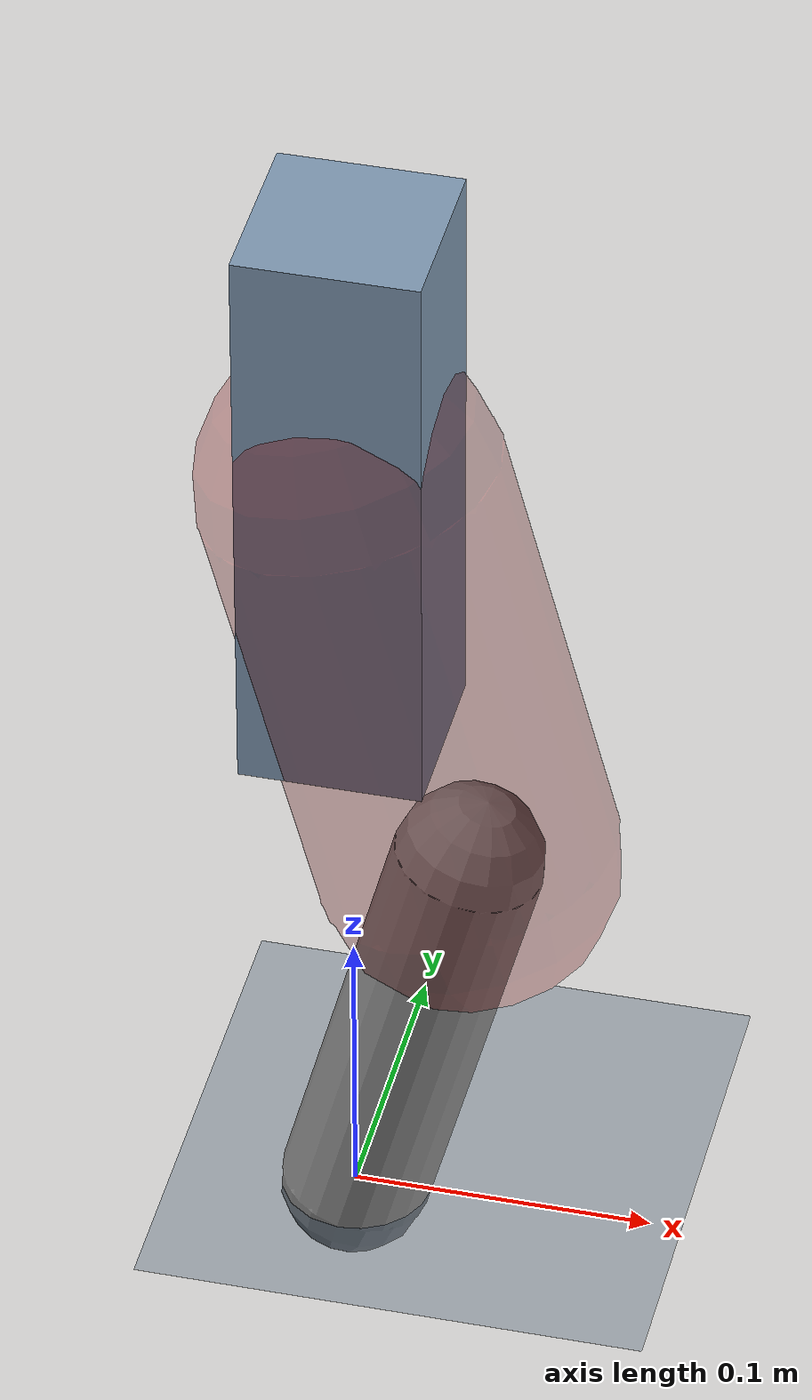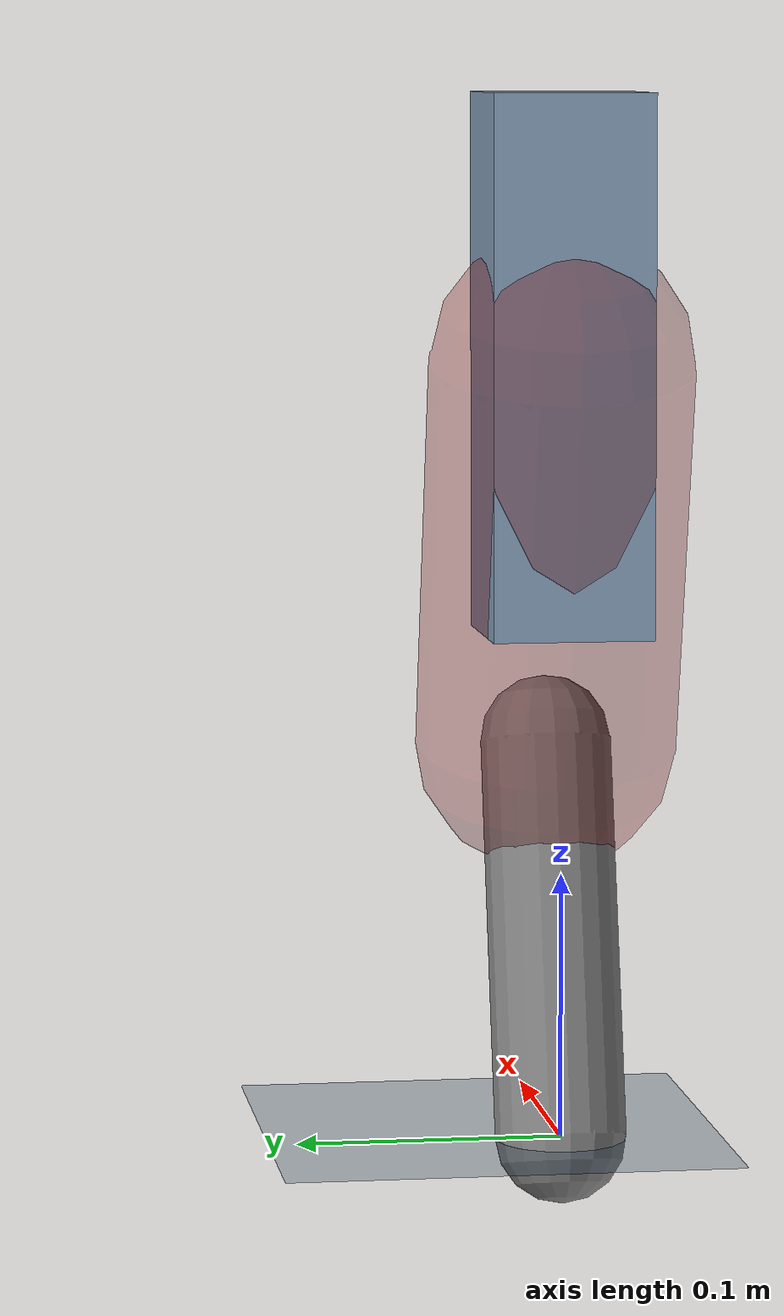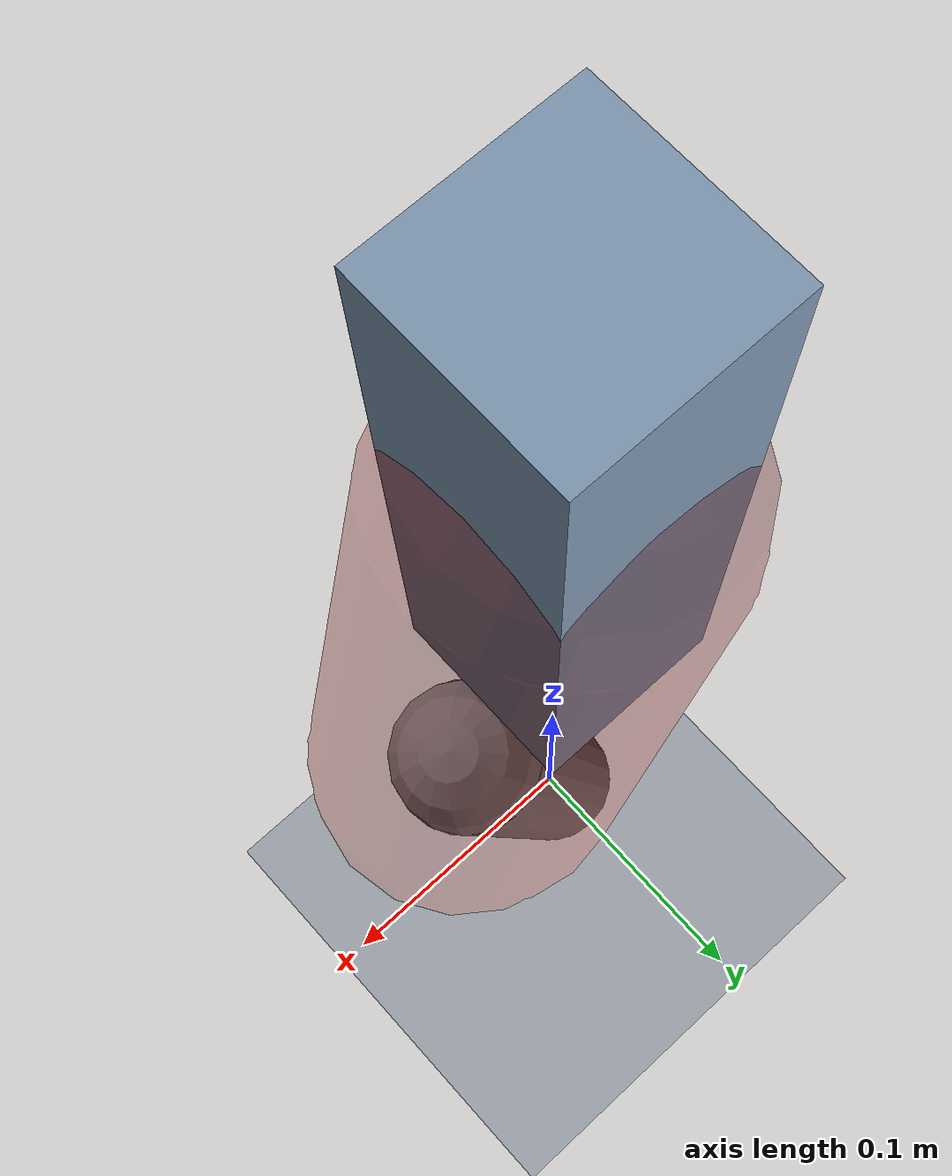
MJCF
<mujoco model="Hopper2D">
	<compiler inertiafromgeom="true" angle="radian" />
	<option timestep="0.001" integrator="implicit" cone="elliptic" solver="Newton" tolerance="1e-10" />

	<default>
		<geom contype="1" conaffinity="1" condim="3" friction="2 0.005 0.0001" solref="0.005 1" />
		<joint limited="true" damping="0.1" />
	</default>

	<asset>
		<texture name="skybox" type="skybox" builtin="gradient" rgb1=".4 .6 .8" rgb2="0 0 0" width="800" height="800" />
		<texture name="grid" type="2d" builtin="checker" rgb1=".1 .2 .3" rgb2=".2 .3 .4" width="300" height="300" mark="edge" markrgb=".2 .3 .4" />
		<material name="ground" texture="grid" texrepeat="1 1" texuniform="true" reflectance="0.1" />
		<material name="leg" rgba="0.5 0.6 0.7 1" />
	</asset>

	<worldbody>

		<geom name="floor" type="plane" size="5 5 0.25" material="ground" />

		<light directional="false" diffuse="0.8 0.8 0.8" specular="0.3 0.3 0.3" pos="0 0 2" dir="0 0 -1" />
		<light mode="targetbodycom" target="base" directional="false" diffuse="0.8 0.8 0.8" specular="0.3 0.3 0.3" pos="0 0 2" dir="0 0 -1" />

		<camera name="fixed" pos="0 -2 1" xyaxes="1 0 0 0 0 1" />
		<camera name="tracking" mode="trackcom" pos="0 -3 1" />

		<body name="root" pos="0 0 0.29125932270271715">
			<joint name="slide_x" type="slide" axis="1 0 0" range="-100 100" />
			<joint name="slide_z" type="slide" axis="0 0 1" range="0 10" />

			<body name="base" pos="0 0 0">
				<geom name="torso" type="box" size="0.03 0.03 0.1" mass="1.5779999999999998" material="leg" />

				<body name="link1" pos="0 0 0" euler="0 1.3127817670432438 0">
					<joint type="hinge" axis="0 -1 0" pos="0 0 0" name="hinge1" limited="true" range="-3.14 3.14" stiffness="0" damping="0.1" />
					<geom name="thigh" type="capsule" fromto="0 0 0 0.15083624388619485 0 0" size="0.05" rgba="0.5 0 0 0.3" mass="0.6105069853268676" />

					<body name="link2" pos="0.15083624388619485 0 0" euler="0 0.5167540305057018 0">
						<joint type="hinge" axis="0 -1 0" pos="0 0 0" name="hinge2" limited="true" range="-3.14 3.14" stiffness="0" damping="0.1" />
						<geom name="shank" type="capsule" fromto="0 0 0 0.15042307881652234 0 0" size="0.025" mass="0.3580807709348701" />

					</body>
				</body>
			</body>
		</body>
	</worldbody>

	<actuator>
		<motor name="torque1" joint="hinge1" ctrlrange="-27.62144725810453 27.62144725810453" ctrllimited="true" gear="1" />
		<motor name="torque2" joint="hinge2" ctrlrange="-46.82387294797759 46.82387294797759" ctrllimited="true" gear="1" />
	</actuator>
</mujoco>
